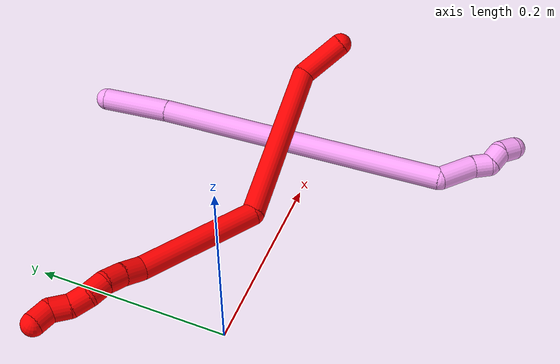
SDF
<sdf version="1.7">
 <world name="default">
  <model name="2">
   <static>0</static>
   <link name="2">
    <collision name="collision-cylinder-e_1_1_4">
     <pose>-0.008098 0.021891 0.014221 -0.994659 -0.300814 0.164167</pose>
     <geometry><cylinder><radius>0.0125</radius><length>0.054664</length></cylinder></geometry>
     <surface>
      <friction><ode><mu>1.16</mu><mu2>1.16</mu2><slip1>0</slip1><slip2>0</slip2></ode></friction>
      <contact><ode><kp>1e+06</kp><kd>1</kd><max_vel>0</max_vel><min_depth>0.001</min_depth></ode></contact>
     </surface>
    </collision>
    <visual name="visual-cylinder-e_1_1_4">
     <pose>-0.008098 0.021891 0.014221 -0.994659 -0.300814 0.164167</pose>
     <geometry><cylinder><radius>0.0125</radius><length>0.054664</length></cylinder></geometry>
     <material><ambient>1 0 0 1</ambient></material>
    </visual>
    <collision name="collision-cylinder-e_2_4_5">
     <pose>0.007149 0.135197 0.037736 -1.46949 0.248808 -0.225011</pose>
     <geometry><cylinder><radius>0.0125</radius><length>0.189613</length></cylinder></geometry>
     <surface>
      <friction><ode><mu>1.16</mu><mu2>1.16</mu2><slip1>0</slip1><slip2>0</slip2></ode></friction>
      <contact><ode><kp>1e+06</kp><kd>1</kd><max_vel>0</max_vel><min_depth>0.001</min_depth></ode></contact>
     </surface>
    </collision>
    <visual name="visual-cylinder-e_2_4_5">
     <pose>0.007149 0.135197 0.037736 -1.46949 0.248808 -0.225011</pose>
     <geometry><cylinder><radius>0.0125</radius><length>0.189613</length></cylinder></geometry>
     <material><ambient>1 0 0 1</ambient></material>
    </visual>
    <collision name="collision-cylinder-e_3_5_6">
     <pose>0.000947 0.285188 0.054882 -1.43752 -0.463627 0.407317</pose>
     <geometry><cylinder><radius>0.0125</radius><length>0.132148</length></cylinder></geometry>
     <surface>
      <friction><ode><mu>1.16</mu><mu2>1.16</mu2><slip1>0</slip1><slip2>0</slip2></ode></friction>
      <contact><ode><kp>1e+06</kp><kd>1</kd><max_vel>0</max_vel><min_depth>0.001</min_depth></ode></contact>
     </surface>
    </collision>
    <visual name="visual-cylinder-e_3_5_6">
     <pose>0.000947 0.285188 0.054882 -1.43752 -0.463627 0.407317</pose>
     <geometry><cylinder><radius>0.0125</radius><length>0.132148</length></cylinder></geometry>
     <material><ambient>1 0 0 1</ambient></material>
    </visual>
    <collision name="collision-cylinder-e_4_6_7">
     <pose>-0.034038 0.353492 0.06074 -1.77302 -0.500904 0.607766</pose>
     <geometry><cylinder><radius>0.0125</radius><length>0.022644</length></cylinder></geometry>
     <surface>
      <friction><ode><mu>1.16</mu><mu2>1.16</mu2><slip1>0</slip1><slip2>0</slip2></ode></friction>
      <contact><ode><kp>1e+06</kp><kd>1</kd><max_vel>0</max_vel><min_depth>0.001</min_depth></ode></contact>
     </surface>
    </collision>
    <visual name="visual-cylinder-e_4_6_7">
     <pose>-0.034038 0.353492 0.06074 -1.77302 -0.500904 0.607766</pose>
     <geometry><cylinder><radius>0.0125</radius><length>0.022644</length></cylinder></geometry>
     <material><ambient>1 0 0 1</ambient></material>
    </visual>
    <collision name="collision-cylinder-e_5_7_8">
     <pose>-0.043386 0.372753 0.057099 -1.74176 -0.384225 0.453983</pose>
     <geometry><cylinder><radius>0.0125</radius><length>0.020868</length></cylinder></geometry>
     <surface>
      <friction><ode><mu>1.16</mu><mu2>1.16</mu2><slip1>0</slip1><slip2>0</slip2></ode></friction>
      <contact><ode><kp>1e+06</kp><kd>1</kd><max_vel>0</max_vel><min_depth>0.001</min_depth></ode></contact>
     </surface>
    </collision>
    <visual name="visual-cylinder-e_5_7_8">
     <pose>-0.043386 0.372753 0.057099 -1.74176 -0.384225 0.453983</pose>
     <geometry><cylinder><radius>0.0125</radius><length>0.020868</length></cylinder></geometry>
     <material><ambient>1 0 0 1</ambient></material>
    </visual>
    <collision name="collision-cylinder-e_6_8_9">
     <pose>-0.049531 0.392024 0.056216 -1.49264 -0.224771 0.207984</pose>
     <geometry><cylinder><radius>0.0125</radius><length>0.020041</length></cylinder></geometry>
     <surface>
      <friction><ode><mu>1.16</mu><mu2>1.16</mu2><slip1>0</slip1><slip2>0</slip2></ode></friction>
      <contact><ode><kp>1e+06</kp><kd>1</kd><max_vel>0</max_vel><min_depth>0.001</min_depth></ode></contact>
     </surface>
    </collision>
    <visual name="visual-cylinder-e_6_8_9">
     <pose>-0.049531 0.392024 0.056216 -1.49264 -0.224771 0.207984</pose>
     <geometry><cylinder><radius>0.0125</radius><length>0.020041</length></cylinder></geometry>
     <material><ambient>1 0 0 1</ambient></material>
    </visual>
    <collision name="collision-cylinder-e_7_9_10">
     <pose>-0.055814 0.410539 0.05956 -1.28482 -0.416778 0.313866</pose>
     <geometry><cylinder><radius>0.0125</radius><length>0.020009</length></cylinder></geometry>
     <surface>
      <friction><ode><mu>1.16</mu><mu2>1.16</mu2><slip1>0</slip1><slip2>0</slip2></ode></friction>
      <contact><ode><kp>1e+06</kp><kd>1</kd><max_vel>0</max_vel><min_depth>0.001</min_depth></ode></contact>
     </surface>
    </collision>
    <visual name="visual-cylinder-e_7_9_10">
     <pose>-0.055814 0.410539 0.05956 -1.28482 -0.416778 0.313866</pose>
     <geometry><cylinder><radius>0.0125</radius><length>0.020009</length></cylinder></geometry>
     <material><ambient>1 0 0 1</ambient></material>
    </visual>
    <collision name="collision-cylinder-e_8_10_11">
     <pose>-0.066589 0.426646 0.063191 -1.42843 -0.737224 0.646229</pose>
     <geometry><cylinder><radius>0.0125</radius><length>0.020007</length></cylinder></geometry>
     <surface>
      <friction><ode><mu>1.16</mu><mu2>1.16</mu2><slip1>0</slip1><slip2>0</slip2></ode></friction>
      <contact><ode><kp>1e+06</kp><kd>1</kd><max_vel>0</max_vel><min_depth>0.001</min_depth></ode></contact>
     </surface>
    </collision>
    <visual name="visual-cylinder-e_8_10_11">
     <pose>-0.066589 0.426646 0.063191 -1.42843 -0.737224 0.646229</pose>
     <geometry><cylinder><radius>0.0125</radius><length>0.020007</length></cylinder></geometry>
     <material><ambient>1 0 0 1</ambient></material>
    </visual>
    <collision name="collision-cylinder-e_9_11_2">
     <pose>-0.075129 0.443809 0.064566 -1.53779 -0.182504 0.176609</pose>
     <geometry><cylinder><radius>0.0125</radius><length>0.020006</length></cylinder></geometry>
     <surface>
      <friction><ode><mu>1.16</mu><mu2>1.16</mu2><slip1>0</slip1><slip2>0</slip2></ode></friction>
      <contact><ode><kp>1e+06</kp><kd>1</kd><max_vel>0</max_vel><min_depth>0.001</min_depth></ode></contact>
     </surface>
    </collision>
    <visual name="visual-cylinder-e_9_11_2">
     <pose>-0.075129 0.443809 0.064566 -1.53779 -0.182504 0.176609</pose>
     <geometry><cylinder><radius>0.0125</radius><length>0.020006</length></cylinder></geometry>
     <material><ambient>1 0 0 1</ambient></material>
    </visual>
    <collision name="collision-sphere-2">
     <pose>-0.076944 0.45364 0.064891 0 -0 0</pose>
     <geometry><sphere><radius>0.0125</radius></sphere></geometry>
     <surface>
      <friction><ode><mu>1.16</mu><mu2>1.16</mu2><slip1>0</slip1><slip2>0</slip2></ode></friction>
      <contact><ode><kp>1e+06</kp><kd>1</kd><max_vel>0</max_vel><min_depth>0.001</min_depth></ode></contact>
     </surface>
    </collision>
    <visual name="visual-sphere-2">
     <pose>-0.076944 0.45364 0.064891 0 -0 0</pose>
     <geometry><sphere><radius>0.0125</radius></sphere></geometry>
     <material><ambient>1 0 0 1</ambient></material>
    </visual>
    <collision name="collision-sphere-11">
     <pose>-0.073313 0.433977 0.064242 0 -0 0</pose>
     <geometry><sphere><radius>0.0125</radius></sphere></geometry>
     <surface>
      <friction><ode><mu>1.16</mu><mu2>1.16</mu2><slip1>0</slip1><slip2>0</slip2></ode></friction>
      <contact><ode><kp>1e+06</kp><kd>1</kd><max_vel>0</max_vel><min_depth>0.001</min_depth></ode></contact>
     </surface>
    </collision>
    <visual name="visual-sphere-11">
     <pose>-0.073313 0.433977 0.064242 0 -0 0</pose>
     <geometry><sphere><radius>0.0125</radius></sphere></geometry>
     <material><ambient>1 0 0 1</ambient></material>
    </visual>
    <collision name="collision-sphere-10">
     <pose>-0.059864 0.419315 0.06214 0 -0 0</pose>
     <geometry><sphere><radius>0.0125</radius></sphere></geometry>
     <surface>
      <friction><ode><mu>1.16</mu><mu2>1.16</mu2><slip1>0</slip1><slip2>0</slip2></ode></friction>
      <contact><ode><kp>1e+06</kp><kd>1</kd><max_vel>0</max_vel><min_depth>0.001</min_depth></ode></contact>
     </surface>
    </collision>
    <visual name="visual-sphere-10">
     <pose>-0.059864 0.419315 0.06214 0 -0 0</pose>
     <geometry><sphere><radius>0.0125</radius></sphere></geometry>
     <material><ambient>1 0 0 1</ambient></material>
    </visual>
    <collision name="collision-sphere-9">
     <pose>-0.051764 0.401762 0.056979 0 -0 0</pose>
     <geometry><sphere><radius>0.0125</radius></sphere></geometry>
     <surface>
      <friction><ode><mu>1.16</mu><mu2>1.16</mu2><slip1>0</slip1><slip2>0</slip2></ode></friction>
      <contact><ode><kp>1e+06</kp><kd>1</kd><max_vel>0</max_vel><min_depth>0.001</min_depth></ode></contact>
     </surface>
    </collision>
    <visual name="visual-sphere-9">
     <pose>-0.051764 0.401762 0.056979 0 -0 0</pose>
     <geometry><sphere><radius>0.0125</radius></sphere></geometry>
     <material><ambient>1 0 0 1</ambient></material>
    </visual>
    <collision name="collision-sphere-4">
     <pose>-0.016197 0.043781 0.028443 0 -0 0</pose>
     <geometry><sphere><radius>0.0125</radius></sphere></geometry>
     <surface>
      <friction><ode><mu>1.16</mu><mu2>1.16</mu2><slip1>0</slip1><slip2>0</slip2></ode></friction>
      <contact><ode><kp>1e+06</kp><kd>1</kd><max_vel>0</max_vel><min_depth>0.001</min_depth></ode></contact>
     </surface>
    </collision>
    <visual name="visual-sphere-4">
     <pose>-0.016197 0.043781 0.028443 0 -0 0</pose>
     <geometry><sphere><radius>0.0125</radius></sphere></geometry>
     <material><ambient>1 0 0 1</ambient></material>
    </visual>
    <collision name="collision-sphere-1">
     <geometry><sphere><radius>0.0125</radius></sphere></geometry>
     <surface>
      <friction><ode><mu>1.16</mu><mu2>1.16</mu2><slip1>0</slip1><slip2>0</slip2></ode></friction>
      <contact><ode><kp>1e+06</kp><kd>1</kd><max_vel>0</max_vel><min_depth>0.001</min_depth></ode></contact>
     </surface>
    </collision>
    <visual name="visual-sphere-1">
     <geometry><sphere><radius>0.0125</radius></sphere></geometry>
     <material><ambient>1 0 0 1</ambient></material>
    </visual>
    <collision name="collision-sphere-8">
     <pose>-0.047297 0.382285 0.055454 0 -0 0</pose>
     <geometry><sphere><radius>0.0125</radius></sphere></geometry>
     <surface>
      <friction><ode><mu>1.16</mu><mu2>1.16</mu2><slip1>0</slip1><slip2>0</slip2></ode></friction>
      <contact><ode><kp>1e+06</kp><kd>1</kd><max_vel>0</max_vel><min_depth>0.001</min_depth></ode></contact>
     </surface>
    </collision>
    <visual name="visual-sphere-8">
     <pose>-0.047297 0.382285 0.055454 0 -0 0</pose>
     <geometry><sphere><radius>0.0125</radius></sphere></geometry>
     <material><ambient>1 0 0 1</ambient></material>
    </visual>
    <collision name="collision-sphere-5">
     <pose>0.030495 0.226613 0.047029 0 -0 0</pose>
     <geometry><sphere><radius>0.0125</radius></sphere></geometry>
     <surface>
      <friction><ode><mu>1.16</mu><mu2>1.16</mu2><slip1>0</slip1><slip2>0</slip2></ode></friction>
      <contact><ode><kp>1e+06</kp><kd>1</kd><max_vel>0</max_vel><min_depth>0.001</min_depth></ode></contact>
     </surface>
    </collision>
    <visual name="visual-sphere-5">
     <pose>0.030495 0.226613 0.047029 0 -0 0</pose>
     <geometry><sphere><radius>0.0125</radius></sphere></geometry>
     <material><ambient>1 0 0 1</ambient></material>
    </visual>
    <collision name="collision-sphere-6">
     <pose>-0.028601 0.343763 0.062735 0 -0 0</pose>
     <geometry><sphere><radius>0.0125</radius></sphere></geometry>
     <surface>
      <friction><ode><mu>1.16</mu><mu2>1.16</mu2><slip1>0</slip1><slip2>0</slip2></ode></friction>
      <contact><ode><kp>1e+06</kp><kd>1</kd><max_vel>0</max_vel><min_depth>0.001</min_depth></ode></contact>
     </surface>
    </collision>
    <visual name="visual-sphere-6">
     <pose>-0.028601 0.343763 0.062735 0 -0 0</pose>
     <geometry><sphere><radius>0.0125</radius></sphere></geometry>
     <material><ambient>1 0 0 1</ambient></material>
    </visual>
    <collision name="collision-sphere-7">
     <pose>-0.039475 0.363221 0.058745 0 -0 0</pose>
     <geometry><sphere><radius>0.0125</radius></sphere></geometry>
     <surface>
      <friction><ode><mu>1.16</mu><mu2>1.16</mu2><slip1>0</slip1><slip2>0</slip2></ode></friction>
      <contact><ode><kp>1e+06</kp><kd>1</kd><max_vel>0</max_vel><min_depth>0.001</min_depth></ode></contact>
     </surface>
    </collision>
    <visual name="visual-sphere-7">
     <pose>-0.039475 0.363221 0.058745 0 -0 0</pose>
     <geometry><sphere><radius>0.0125</radius></sphere></geometry>
     <material><ambient>1 0 0 1</ambient></material>
    </visual>
    <inertial>
     <pose>-0.011166 0.227575 0.045253 0 -0 0</pose>
     <mass>0.5</mass>
     <inertia>
      <ixx>0.000673</ixx>
      <ixy>0</ixy>
      <ixz>0</ixz>
      <iyy>0.000144</iyy>
      <iyz>0</iyz>
      <izz>-0.000791</izz>
     </inertia>
    </inertial>
   </link>
   <pose>0.367554 0.017241 0.075658 -3.09843 0.328078 -1.68146</pose>
  </model>
  <model name="4">
   <static>0</static>
   <link name="4">
    <collision name="collision-cylinder-e_1_1_4">
     <pose>0.00445 -0.035307 0.013357 1.20912 0.117354 0.081123</pose>
     <geometry><cylinder><radius>0.0125</radius><length>0.076021</length></cylinder></geometry>
     <surface>
      <friction><ode><mu>1.16</mu><mu2>1.16</mu2><slip1>0</slip1><slip2>0</slip2></ode></friction>
      <contact><ode><kp>1e+06</kp><kd>1</kd><max_vel>0</max_vel><min_depth>0.001</min_depth></ode></contact>
     </surface>
    </collision>
    <visual name="visual-cylinder-e_1_1_4">
     <pose>0.00445 -0.035307 0.013357 1.20912 0.117354 0.081123</pose>
     <geometry><cylinder><radius>0.0125</radius><length>0.076021</length></cylinder></geometry>
     <material><ambient>1 0.65098 0.996078 1</ambient></material>
    </visual>
    <collision name="collision-cylinder-e_2_4_5">
     <pose>0.034616 -0.220275 0.080681 1.22472 0.160247 0.112685</pose>
     <geometry><cylinder><radius>0.0125</radius><length>0.322319</length></cylinder></geometry>
     <surface>
      <friction><ode><mu>1.16</mu><mu2>1.16</mu2><slip1>0</slip1><slip2>0</slip2></ode></friction>
      <contact><ode><kp>1e+06</kp><kd>1</kd><max_vel>0</max_vel><min_depth>0.001</min_depth></ode></contact>
     </surface>
    </collision>
    <visual name="visual-cylinder-e_2_4_5">
     <pose>0.034616 -0.220275 0.080681 1.22472 0.160247 0.112685</pose>
     <geometry><cylinder><radius>0.0125</radius><length>0.322319</length></cylinder></geometry>
     <material><ambient>1 0.65098 0.996078 1</ambient></material>
    </visual>
    <collision name="collision-cylinder-e_3_5_6">
     <pose>0.054372 -0.381199 0.151032 0.602224 -0.291217 -0.091021</pose>
     <geometry><cylinder><radius>0.0125</radius><length>0.041509</length></cylinder></geometry>
     <surface>
      <friction><ode><mu>1.16</mu><mu2>1.16</mu2><slip1>0</slip1><slip2>0</slip2></ode></friction>
      <contact><ode><kp>1e+06</kp><kd>1</kd><max_vel>0</max_vel><min_depth>0.001</min_depth></ode></contact>
     </surface>
    </collision>
    <visual name="visual-cylinder-e_3_5_6">
     <pose>0.054372 -0.381199 0.151032 0.602224 -0.291217 -0.091021</pose>
     <geometry><cylinder><radius>0.0125</radius><length>0.041509</length></cylinder></geometry>
     <material><ambient>1 0.65098 0.996078 1</ambient></material>
    </visual>
    <collision name="collision-cylinder-e_4_6_7">
     <pose>0.047037 -0.399795 0.174091 0.83239 -0.13779 -0.060983</pose>
     <geometry><cylinder><radius>0.0125</radius><length>0.020026</length></cylinder></geometry>
     <surface>
      <friction><ode><mu>1.16</mu><mu2>1.16</mu2><slip1>0</slip1><slip2>0</slip2></ode></friction>
      <contact><ode><kp>1e+06</kp><kd>1</kd><max_vel>0</max_vel><min_depth>0.001</min_depth></ode></contact>
     </surface>
    </collision>
    <visual name="visual-cylinder-e_4_6_7">
     <pose>0.047037 -0.399795 0.174091 0.83239 -0.13779 -0.060983</pose>
     <geometry><cylinder><radius>0.0125</radius><length>0.020026</length></cylinder></geometry>
     <material><ambient>1 0.65098 0.996078 1</ambient></material>
    </visual>
    <collision name="collision-cylinder-e_5_7_8">
     <pose>0.039387 -0.409272 0.188288 0.277413 -0.676235 -0.098096</pose>
     <geometry><cylinder><radius>0.0125</radius><length>0.020053</length></cylinder></geometry>
     <surface>
      <friction><ode><mu>1.16</mu><mu2>1.16</mu2><slip1>0</slip1><slip2>0</slip2></ode></friction>
      <contact><ode><kp>1e+06</kp><kd>1</kd><max_vel>0</max_vel><min_depth>0.001</min_depth></ode></contact>
     </surface>
    </collision>
    <visual name="visual-cylinder-e_5_7_8">
     <pose>0.039387 -0.409272 0.188288 0.277413 -0.676235 -0.098096</pose>
     <geometry><cylinder><radius>0.0125</radius><length>0.020053</length></cylinder></geometry>
     <material><ambient>1 0.65098 0.996078 1</ambient></material>
    </visual>
    <collision name="collision-cylinder-e_6_8_2">
     <pose>0.031402 -0.415863 0.204641 0.466664 -0.171225 -0.040788</pose>
     <geometry><cylinder><radius>0.0125</radius><length>0.020073</length></cylinder></geometry>
     <surface>
      <friction><ode><mu>1.16</mu><mu2>1.16</mu2><slip1>0</slip1><slip2>0</slip2></ode></friction>
      <contact><ode><kp>1e+06</kp><kd>1</kd><max_vel>0</max_vel><min_depth>0.001</min_depth></ode></contact>
     </surface>
    </collision>
    <visual name="visual-cylinder-e_6_8_2">
     <pose>0.031402 -0.415863 0.204641 0.466664 -0.171225 -0.040788</pose>
     <geometry><cylinder><radius>0.0125</radius><length>0.020073</length></cylinder></geometry>
     <material><ambient>1 0.65098 0.996078 1</ambient></material>
    </visual>
    <collision name="collision-sphere-2">
     <pose>0.029692 -0.420313 0.213473 0 -0 0</pose>
     <geometry><sphere><radius>0.0125</radius></sphere></geometry>
     <surface>
      <friction><ode><mu>1.16</mu><mu2>1.16</mu2><slip1>0</slip1><slip2>0</slip2></ode></friction>
      <contact><ode><kp>1e+06</kp><kd>1</kd><max_vel>0</max_vel><min_depth>0.001</min_depth></ode></contact>
     </surface>
    </collision>
    <visual name="visual-sphere-2">
     <pose>0.029692 -0.420313 0.213473 0 -0 0</pose>
     <geometry><sphere><radius>0.0125</radius></sphere></geometry>
     <material><ambient>1 0.65098 0.996078 1</ambient></material>
    </visual>
    <collision name="collision-sphere-4">
     <pose>0.008901 -0.070613 0.026714 0 -0 0</pose>
     <geometry><sphere><radius>0.0125</radius></sphere></geometry>
     <surface>
      <friction><ode><mu>1.16</mu><mu2>1.16</mu2><slip1>0</slip1><slip2>0</slip2></ode></friction>
      <contact><ode><kp>1e+06</kp><kd>1</kd><max_vel>0</max_vel><min_depth>0.001</min_depth></ode></contact>
     </surface>
    </collision>
    <visual name="visual-sphere-4">
     <pose>0.008901 -0.070613 0.026714 0 -0 0</pose>
     <geometry><sphere><radius>0.0125</radius></sphere></geometry>
     <material><ambient>1 0.65098 0.996078 1</ambient></material>
    </visual>
    <collision name="collision-sphere-1">
     <geometry><sphere><radius>0.0125</radius></sphere></geometry>
     <surface>
      <friction><ode><mu>1.16</mu><mu2>1.16</mu2><slip1>0</slip1><slip2>0</slip2></ode></friction>
      <contact><ode><kp>1e+06</kp><kd>1</kd><max_vel>0</max_vel><min_depth>0.001</min_depth></ode></contact>
     </surface>
    </collision>
    <visual name="visual-sphere-1">
     <geometry><sphere><radius>0.0125</radius></sphere></geometry>
     <material><ambient>1 0.65098 0.996078 1</ambient></material>
    </visual>
    <collision name="collision-sphere-8">
     <pose>0.033112 -0.411414 0.195809 0 -0 0</pose>
     <geometry><sphere><radius>0.0125</radius></sphere></geometry>
     <surface>
      <friction><ode><mu>1.16</mu><mu2>1.16</mu2><slip1>0</slip1><slip2>0</slip2></ode></friction>
      <contact><ode><kp>1e+06</kp><kd>1</kd><max_vel>0</max_vel><min_depth>0.001</min_depth></ode></contact>
     </surface>
    </collision>
    <visual name="visual-sphere-8">
     <pose>0.033112 -0.411414 0.195809 0 -0 0</pose>
     <geometry><sphere><radius>0.0125</radius></sphere></geometry>
     <material><ambient>1 0.65098 0.996078 1</ambient></material>
    </visual>
    <collision name="collision-sphere-5">
     <pose>0.060331 -0.369937 0.134648 0 -0 0</pose>
     <geometry><sphere><radius>0.0125</radius></sphere></geometry>
     <surface>
      <friction><ode><mu>1.16</mu><mu2>1.16</mu2><slip1>0</slip1><slip2>0</slip2></ode></friction>
      <contact><ode><kp>1e+06</kp><kd>1</kd><max_vel>0</max_vel><min_depth>0.001</min_depth></ode></contact>
     </surface>
    </collision>
    <visual name="visual-sphere-5">
     <pose>0.060331 -0.369937 0.134648 0 -0 0</pose>
     <geometry><sphere><radius>0.0125</radius></sphere></geometry>
     <material><ambient>1 0.65098 0.996078 1</ambient></material>
    </visual>
    <collision name="collision-sphere-6">
     <pose>0.048413 -0.392461 0.167415 0 -0 0</pose>
     <geometry><sphere><radius>0.0125</radius></sphere></geometry>
     <surface>
      <friction><ode><mu>1.16</mu><mu2>1.16</mu2><slip1>0</slip1><slip2>0</slip2></ode></friction>
      <contact><ode><kp>1e+06</kp><kd>1</kd><max_vel>0</max_vel><min_depth>0.001</min_depth></ode></contact>
     </surface>
    </collision>
    <visual name="visual-sphere-6">
     <pose>0.048413 -0.392461 0.167415 0 -0 0</pose>
     <geometry><sphere><radius>0.0125</radius></sphere></geometry>
     <material><ambient>1 0.65098 0.996078 1</ambient></material>
    </visual>
    <collision name="collision-sphere-7">
     <pose>0.045662 -0.40713 0.180767 0 -0 0</pose>
     <geometry><sphere><radius>0.0125</radius></sphere></geometry>
     <surface>
      <friction><ode><mu>1.16</mu><mu2>1.16</mu2><slip1>0</slip1><slip2>0</slip2></ode></friction>
      <contact><ode><kp>1e+06</kp><kd>1</kd><max_vel>0</max_vel><min_depth>0.001</min_depth></ode></contact>
     </surface>
    </collision>
    <visual name="visual-sphere-7">
     <pose>0.045662 -0.40713 0.180767 0 -0 0</pose>
     <geometry><sphere><radius>0.0125</radius></sphere></geometry>
     <material><ambient>1 0.65098 0.996078 1</ambient></material>
    </visual>
    <inertial>
     <pose>0.032229 -0.228134 0.089319 0 -0 0</pose>
     <mass>0.5</mass>
     <inertia>
      <ixx>0.003116</ixx>
      <ixy>0</ixy>
      <ixz>0</ixz>
      <iyy>0.001297</iyy>
      <iyz>0</iyz>
      <izz>0.002214</izz>
     </inertia>
    </inertial>
   </link>
   <pose>0.243487 0.261093 0.011498 -2.57584 0.951519 -2.81809</pose>
  </model>
 </world>
</sdf>
